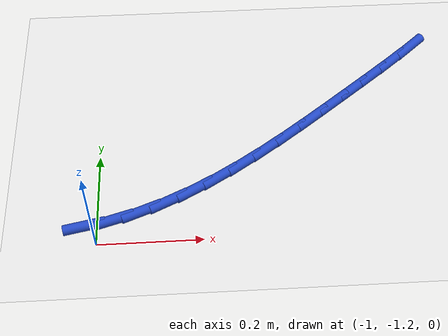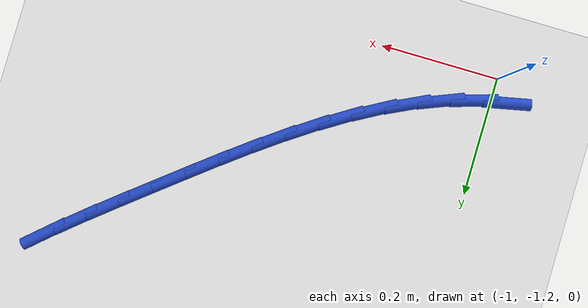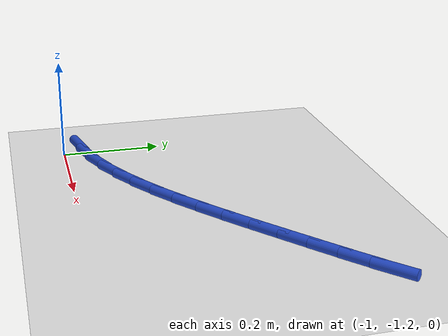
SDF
<sdf version="1.6">
 <world name="default">
  <model name="ground_plane">
   <static>1</static>
   <link name="link">
    <collision name="collision">
     <geometry><plane><normal>0 0 1</normal><size>100 100</size></plane></geometry>
     <surface><friction><ode><mu>100</mu><mu2>50</mu2></ode></friction></surface>
    </collision>
    <visual name="visual">
     <cast_shadows>0</cast_shadows>
     <geometry><plane><normal>0 0 1</normal><size>100 100</size></plane></geometry>
     <material>
      <script><uri>file://media/materials/scripts/gazebo.material</uri><name>Gazebo/WhiteGlow</name></script>
     </material>
    </visual>
   </link>
  </model>
  <model name="line">
   <link name="link_91">
    <pose>-1.0229654674273843 -1.164611185358485 0.01 0 1.57 0.2062296375851742</pose>
    <collision name="collision">
     <geometry><cylinder><radius>0.01</radius><length>0.08</length></cylinder></geometry>
    </collision>
    <visual name="visual">
     <material>
      <script><name>Gazebo/Blue</name><uri>file://media/materials/scripts/gazebo.material</uri></script>
     </material>
     <geometry><cylinder><radius>0.01</radius><length>0.08</length></cylinder></geometry>
    </visual>
   </link>
   <link name="link_92">
    <pose>-0.9696987381885417 -1.1534675756273765 0.01 0 1.57 0.3015401662094384</pose>
    <collision name="collision">
     <geometry><cylinder><radius>0.01</radius><length>0.08</length></cylinder></geometry>
    </collision>
    <visual name="visual">
     <material>
      <script><name>Gazebo/Blue</name><uri>file://media/materials/scripts/gazebo.material</uri></script>
     </material>
     <geometry><cylinder><radius>0.01</radius><length>0.08</length></cylinder></geometry>
    </visual>
   </link>
   <link name="link_93">
    <pose>-0.9175863362503013 -1.1372593367446082 0.01 0 1.57 0.38569107588798174</pose>
    <collision name="collision">
     <geometry><cylinder><radius>0.01</radius><length>0.08</length></cylinder></geometry>
    </collision>
    <visual name="visual">
     <material>
      <script><name>Gazebo/Blue</name><uri>file://media/materials/scripts/gazebo.material</uri></script>
     </material>
     <geometry><cylinder><radius>0.01</radius><length>0.08</length></cylinder></geometry>
    </visual>
   </link>
   <link name="link_94">
    <pose>-0.8665401855945647 -1.116533231365618 0.01 0 1.57 0.4581286737039808</pose>
    <collision name="collision">
     <geometry><cylinder><radius>0.01</radius><length>0.08</length></cylinder></geometry>
    </collision>
    <visual name="visual">
     <material>
      <script><name>Gazebo/Blue</name><uri>file://media/materials/scripts/gazebo.material</uri></script>
     </material>
     <geometry><cylinder><radius>0.01</radius><length>0.08</length></cylinder></geometry>
    </visual>
   </link>
   <link name="link_95">
    <pose>-0.8164696106114898 -1.0918424171381642 0.01 0 1.57 0.5190888750127222</pose>
    <collision name="collision">
     <geometry><cylinder><radius>0.01</radius><length>0.08</length></cylinder></geometry>
    </collision>
    <visual name="visual">
     <material>
      <script><name>Gazebo/Blue</name><uri>file://media/materials/scripts/gazebo.material</uri></script>
     </material>
     <geometry><cylinder><radius>0.01</radius><length>0.08</length></cylinder></geometry>
    </visual>
   </link>
   <link name="link_96">
    <pose>-0.7672839356912344 -1.063740051710006 0.01 0 1.57 0.5691699592775048</pose>
    <collision name="collision">
     <geometry><cylinder><radius>0.01</radius><length>0.08</length></cylinder></geometry>
    </collision>
    <visual name="visual">
     <material>
      <script><name>Gazebo/Blue</name><uri>file://media/materials/scripts/gazebo.material</uri></script>
     </material>
     <geometry><cylinder><radius>0.01</radius><length>0.08</length></cylinder></geometry>
    </visual>
   </link>
   <link name="link_97">
    <pose>-0.718892485223959 -1.0327792927289035 0.01 0 1.57 0.6090981008201579</pose>
    <collision name="collision">
     <geometry><cylinder><radius>0.01</radius><length>0.08</length></cylinder></geometry>
    </collision>
    <visual name="visual">
     <material>
      <script><name>Gazebo/Blue</name><uri>file://media/materials/scripts/gazebo.material</uri></script>
     </material>
     <geometry><cylinder><radius>0.01</radius><length>0.08</length></cylinder></geometry>
    </visual>
   </link>
   <link name="link_98">
    <pose>-0.671204583599821 -0.9995132978426146 0.01 0 1.57 0.6395714355821996</pose>
    <collision name="collision">
     <geometry><cylinder><radius>0.01</radius><length>0.08</length></cylinder></geometry>
    </collision>
    <visual name="visual">
     <material>
      <script><name>Gazebo/Blue</name><uri>file://media/materials/scripts/gazebo.material</uri></script>
     </material>
     <geometry><cylinder><radius>0.01</radius><length>0.08</length></cylinder></geometry>
    </visual>
   </link>
   <link name="link_99">
    <pose>-0.6241295552089793 -0.9644952246988996 0.01 0 1.57 0.661166780890005</pose>
    <collision name="collision">
     <geometry><cylinder><radius>0.01</radius><length>0.08</length></cylinder></geometry>
    </collision>
    <visual name="visual">
     <material>
      <script><name>Gazebo/Blue</name><uri>file://media/materials/scripts/gazebo.material</uri></script>
     </material>
     <geometry><cylinder><radius>0.01</radius><length>0.08</length></cylinder></geometry>
    </visual>
   </link>
   <link name="link_100">
    <pose>-0.5775767244415919 -0.9282782309455162 0.01 0 1.57 0.6742874360906196</pose>
    <collision name="collision">
     <geometry><cylinder><radius>0.01</radius><length>0.08</length></cylinder></geometry>
    </collision>
    <visual name="visual">
     <material>
      <script><name>Gazebo/Blue</name><uri>file://media/materials/scripts/gazebo.material</uri></script>
     </material>
     <geometry><cylinder><radius>0.01</radius><length>0.08</length></cylinder></geometry>
    </visual>
   </link>
   <link name="link_101">
    <pose>-0.5314554156878188 -0.891415474230225 0.01 0 1.57 0.6792152656597402</pose>
    <collision name="collision">
     <geometry><cylinder><radius>0.01</radius><length>0.08</length></cylinder></geometry>
    </collision>
    <visual name="visual">
     <material>
      <script><name>Gazebo/Blue</name><uri>file://media/materials/scripts/gazebo.material</uri></script>
     </material>
     <geometry><cylinder><radius>0.01</radius><length>0.08</length></cylinder></geometry>
    </visual>
   </link>
   <link name="link_102">
    <pose>-0.48567706503832164 -0.8544556682127319 0.01 0 1.57 0.6816264158573947</pose>
    <collision name="collision">
     <geometry><cylinder><radius>0.01</radius><length>0.08</length></cylinder></geometry>
    </collision>
    <visual name="visual">
     <material>
      <script><name>Gazebo/Blue</name><uri>file://media/materials/scripts/gazebo.material</uri></script>
     </material>
     <geometry><cylinder><radius>0.01</radius><length>0.08</length></cylinder></geometry>
    </visual>
   </link>
   <link name="link_103">
    <pose>-0.44029987500224854 -0.8176386625783373 0.01 0 1.57 0.6908613229413121</pose>
    <collision name="collision">
     <geometry><cylinder><radius>0.01</radius><length>0.08</length></cylinder></geometry>
    </collision>
    <visual name="visual">
     <material>
      <script><name>Gazebo/Blue</name><uri>file://media/materials/scripts/gazebo.material</uri></script>
     </material>
     <geometry><cylinder><radius>0.01</radius><length>0.08</length></cylinder></geometry>
    </visual>
   </link>
   <link name="link_104">
    <pose>-0.39562189084651034 -0.7806995676573877 0.01 0 1.57 0.7079793693288549</pose>
    <collision name="collision">
     <geometry><cylinder><radius>0.01</radius><length>0.08</length></cylinder></geometry>
    </collision>
    <visual name="visual">
     <material>
      <script><name>Gazebo/Blue</name><uri>file://media/materials/scripts/gazebo.material</uri></script>
     </material>
     <geometry><cylinder><radius>0.01</radius><length>0.08</length></cylinder></geometry>
    </visual>
   </link>
   <link name="link_105">
    <pose>-0.35196330424180944 -0.7433268875717813 0.01 0 1.57 0.7332152778270462</pose>
    <collision name="collision">
     <geometry><cylinder><radius>0.01</radius><length>0.08</length></cylinder></geometry>
    </collision>
    <visual name="visual">
     <material>
      <script><name>Gazebo/Blue</name><uri>file://media/materials/scripts/gazebo.material</uri></script>
     </material>
     <geometry><cylinder><radius>0.01</radius><length>0.08</length></cylinder></geometry>
    </visual>
   </link>
  </model>
 </world>
</sdf>
